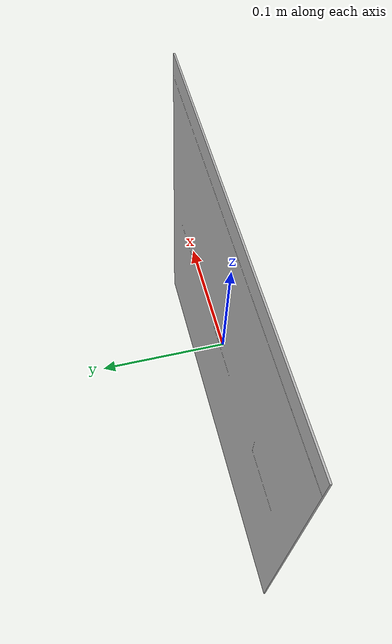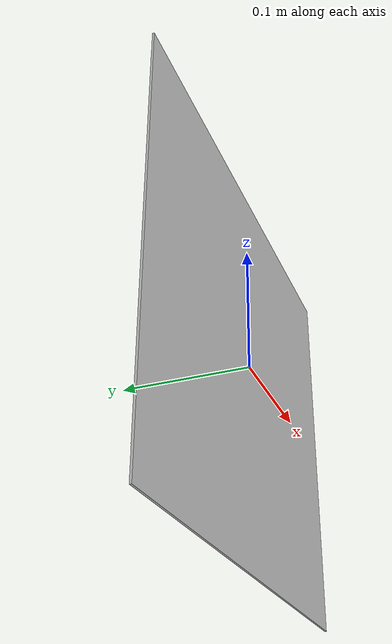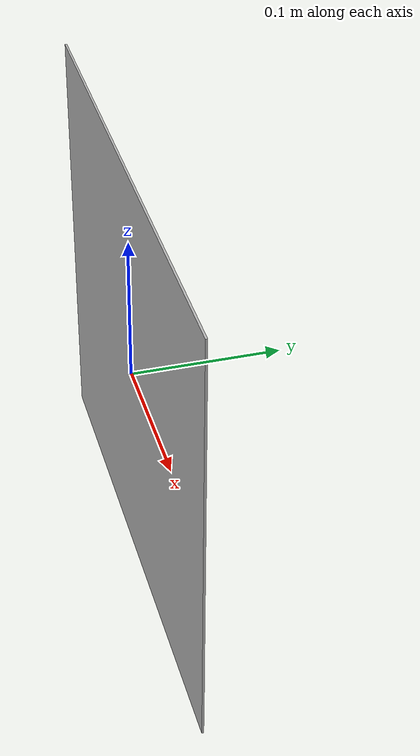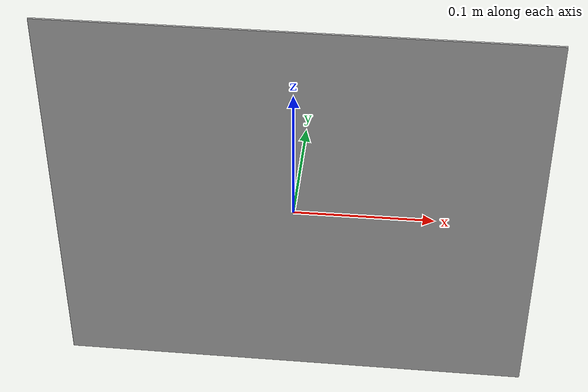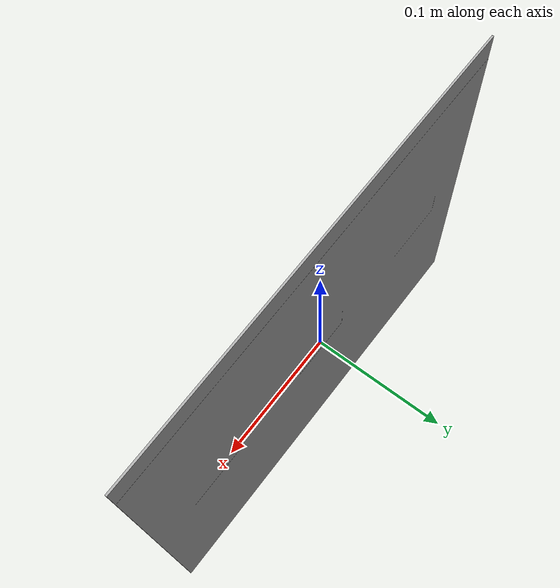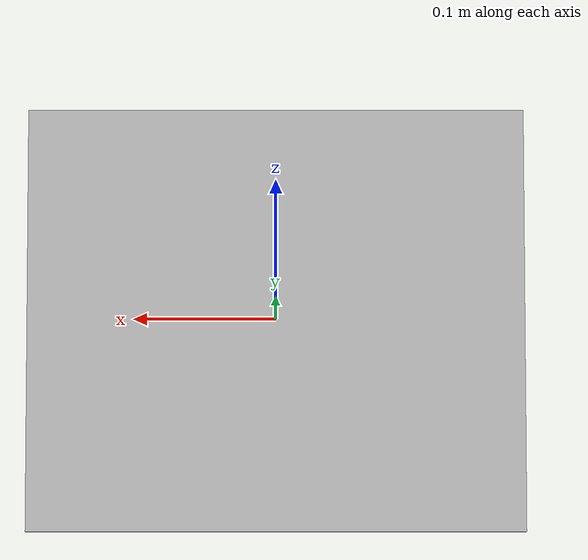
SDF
<?xml version="1.0" ?>
<sdf version="1.5">
  <model name="3d_test_track">
    <static>true</static>
    <link name="3d_test_track_link">
      <visual name="3d_test_track_visual">
       <cast_shadows>false</cast_shadows>
        <geometry>
	       <mesh>
            <uri>model://3d_test_track/meshes/Straight_Line_1.stl</uri>
         </mesh>
        </geometry>
      </visual>
      <collision name="3d_test_track_collision">
          <geometry>
	        <plane>
            <normal>0 0 1</normal>
            <size>1 1</size>
          </plane>
        </geometry>
        <surface>
          <friction>
            <ode>
              <mu>1</mu>
              <mu2>1</mu2>
            </ode>
          </friction>
        </surface>
      </collision>
    </link>
  </model>
</sdf>
